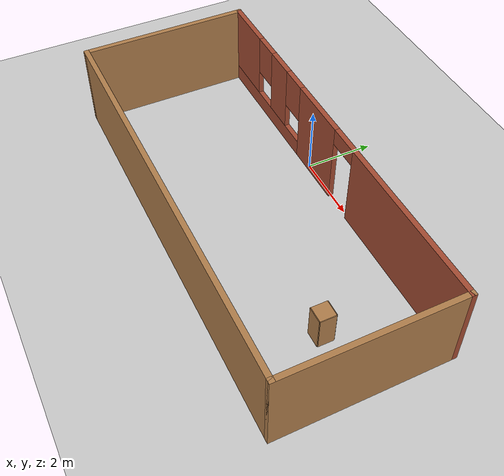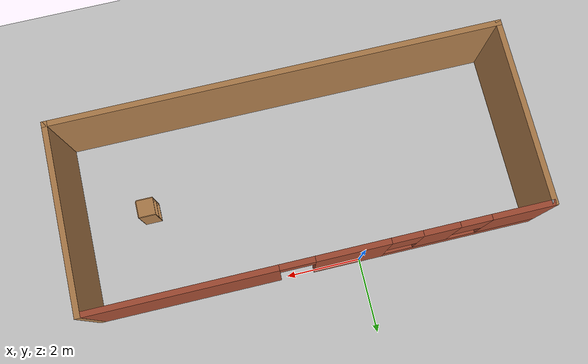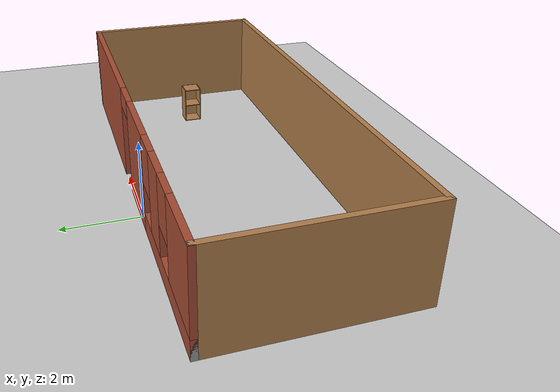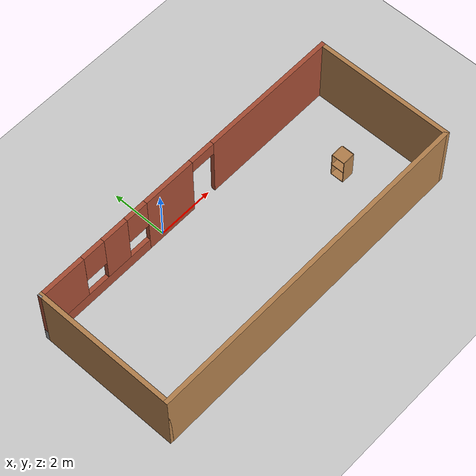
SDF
<sdf version="1.6">
 <world name="default">
  <model name="ground_plane">
   <static>1</static>
   <link name="link">
    <collision name="collision">
     <geometry><plane><normal>0 0 1</normal><size>100 100</size></plane></geometry>
     <surface>
      <contact><collide_bitmask>65535</collide_bitmask></contact>
      <friction><ode><mu>100</mu><mu2>50</mu2></ode></friction>
     </surface>
    </collision>
    <visual name="visual">
     <cast_shadows>0</cast_shadows>
     <geometry><plane><normal>0 0 1</normal><size>100 100</size></plane></geometry>
     <material>
      <script><uri>file://media/materials/scripts/gazebo.material</uri><name>Gazebo/Grey</name></script>
     </material>
    </visual>
   </link>
  </model>
  <model name="rectangle_building_1">
   <pose>1.17854 -2.44652 0 0 -0 0</pose>
   <link name="Wall_13">
    <collision name="Wall_13_Collision">
     <geometry><box><size>0.15 0.15 2.5</size></box></geometry>
     <pose>0 0 1.25 0 -0 0</pose>
    </collision>
    <visual name="Wall_13_Visual">
     <pose>0 0 1.25 0 -0 0</pose>
     <geometry><box><size>0.15 0.15 2.5</size></box></geometry>
     <material>
      <script><uri>file://media/materials/scripts/gazebo.material</uri><name>Gazebo/Grey</name></script>
      <ambient>1 1 1 1</ambient>
     </material>
     <meta><layer>0</layer></meta>
    </visual>
    <pose>-5.925 2.425 0 0 -0 0</pose>
   </link>
   <link name="Wall_26">
    <collision name="Wall_26_Collision">
     <geometry><box><size>5 0.15 2.5</size></box></geometry>
     <pose>0 0 1.25 0 -0 0</pose>
    </collision>
    <visual name="Wall_26_Visual">
     <pose>0 0 1.25 0 -0 0</pose>
     <geometry><box><size>5 0.15 2.5</size></box></geometry>
     <material>
      <script><uri>file://media/materials/scripts/gazebo.material</uri><name>Gazebo/Wood</name></script>
      <ambient>1 1 1 1</ambient>
     </material>
     <meta><layer>0</layer></meta>
    </visual>
    <pose>-5.925 0 0 0 0 -1.5708</pose>
   </link>
   <link name="Wall_27">
    <collision name="Wall_27_Collision">
     <geometry><box><size>12 0.15 2.5</size></box></geometry>
     <pose>0 0 1.25 0 -0 0</pose>
    </collision>
    <visual name="Wall_27_Visual">
     <pose>0 0 1.25 0 -0 0</pose>
     <geometry><box><size>12 0.15 2.5</size></box></geometry>
     <material>
      <script><uri>file://media/materials/scripts/gazebo.material</uri><name>Gazebo/Wood</name></script>
      <ambient>0.435294 0.796078 0.67451 1</ambient>
     </material>
     <meta><layer>0</layer></meta>
    </visual>
    <pose>0 -2.425 0 0 -0 0</pose>
   </link>
   <link name="Wall_28">
    <collision name="Wall_28_Collision">
     <geometry><box><size>5 0.15 2.5</size></box></geometry>
     <pose>0 0 1.25 0 -0 0</pose>
    </collision>
    <visual name="Wall_28_Visual">
     <pose>0 0 1.25 0 -0 0</pose>
     <geometry><box><size>5 0.15 2.5</size></box></geometry>
     <material>
      <script><uri>file://media/materials/scripts/gazebo.material</uri><name>Gazebo/Wood</name></script>
      <ambient>0.996078 0.47451 0.0196078 1</ambient>
     </material>
     <meta><layer>0</layer></meta>
    </visual>
    <pose>5.925 0 0 0 -0 1.5708</pose>
   </link>
   <link name="Wall_29">
    <pose>0 2.425 0 0 -0 3.14159</pose>
    <visual name="Wall_29_Visual_0">
     <pose>-3.50367 0 1.25 0 -0 0</pose>
     <geometry><box><size>4.99266 0.15 2.5</size></box></geometry>
     <material>
      <script><uri>file://media/materials/scripts/gazebo.material</uri><name>Gazebo/Bricks</name></script>
      <ambient>1 1 1 1</ambient>
     </material>
     <meta><layer>0</layer></meta>
    </visual>
    <collision name="Wall_29_Collision_0">
     <geometry><box><size>4.99266 0.15 2.5</size></box></geometry>
     <pose>-3.50367 0 1.25 0 -0 0</pose>
    </collision>
    <visual name="Wall_29_Visual_1">
     <pose>0.843056 0 1.25 0 -0 0</pose>
     <geometry><box><size>1.9008 0.15 2.5</size></box></geometry>
     <material>
      <script><uri>file://media/materials/scripts/gazebo.material</uri><name>Gazebo/Bricks</name></script>
      <ambient>1 1 1 1</ambient>
     </material>
     <meta><layer>0</layer></meta>
    </visual>
    <collision name="Wall_29_Collision_1">
     <geometry><box><size>1.9008 0.15 2.5</size></box></geometry>
     <pose>0.843056 0 1.25 0 -0 0</pose>
    </collision>
    <visual name="Wall_29_Visual_2">
     <pose>3.89673 0 0.25 0 -0 0</pose>
     <geometry><box><size>4.20654 0.15 0.5</size></box></geometry>
     <material>
      <script><uri>file://media/materials/scripts/gazebo.material</uri><name>Gazebo/Bricks</name></script>
      <ambient>1 1 1 1</ambient>
     </material>
     <meta><layer>0</layer></meta>
    </visual>
    <collision name="Wall_29_Collision_2">
     <geometry><box><size>4.20654 0.15 0.5</size></box></geometry>
     <pose>3.89673 0 0.25 0 -0 0</pose>
    </collision>
    <visual name="Wall_29_Visual_3">
     <pose>3.05969 0 1.5 0 -0 0</pose>
     <geometry><box><size>0.932475 0.15 2</size></box></geometry>
     <material>
      <script><uri>file://media/materials/scripts/gazebo.material</uri><name>Gazebo/Bricks</name></script>
      <ambient>1 1 1 1</ambient>
     </material>
     <meta><layer>0</layer></meta>
    </visual>
    <collision name="Wall_29_Collision_3">
     <geometry><box><size>0.932475 0.15 2</size></box></geometry>
     <pose>3.05969 0 1.5 0 -0 0</pose>
    </collision>
    <visual name="Wall_29_Visual_4">
     <pose>5.16297 0 1.5 0 -0 0</pose>
     <geometry><box><size>1.67407 0.15 2</size></box></geometry>
     <material>
      <script><uri>file://media/materials/scripts/gazebo.material</uri><name>Gazebo/Bricks</name></script>
      <ambient>1 1 1 1</ambient>
     </material>
     <meta><layer>0</layer></meta>
    </visual>
    <collision name="Wall_29_Collision_4">
     <geometry><box><size>1.67407 0.15 2</size></box></geometry>
     <pose>5.16297 0 1.5 0 -0 0</pose>
    </collision>
    <visual name="Wall_29_Visual_5">
     <pose>2.19346 0 1.9 0 -0 0</pose>
     <geometry><box><size>0.8 0.15 1.2</size></box></geometry>
     <material>
      <script><uri>file://media/materials/scripts/gazebo.material</uri><name>Gazebo/Bricks</name></script>
      <ambient>1 1 1 1</ambient>
     </material>
     <meta><layer>0</layer></meta>
    </visual>
    <collision name="Wall_29_Collision_5">
     <geometry><box><size>0.8 0.15 1.2</size></box></geometry>
     <pose>2.19346 0 1.9 0 -0 0</pose>
    </collision>
    <visual name="Wall_29_Visual_6">
     <pose>3.92593 0 1.9 0 -0 0</pose>
     <geometry><box><size>0.8 0.15 1.2</size></box></geometry>
     <material>
      <script><uri>file://media/materials/scripts/gazebo.material</uri><name>Gazebo/Bricks</name></script>
      <ambient>1 1 1 1</ambient>
     </material>
     <meta><layer>0</layer></meta>
    </visual>
    <collision name="Wall_29_Collision_6">
     <geometry><box><size>0.8 0.15 1.2</size></box></geometry>
     <pose>3.92593 0 1.9 0 -0 0</pose>
    </collision>
    <visual name="Wall_29_Visual_7">
     <pose>-0.557344 0 2.25 0 -0 0</pose>
     <geometry><box><size>0.9 0.15 0.5</size></box></geometry>
     <material>
      <script><uri>file://media/materials/scripts/gazebo.material</uri><name>Gazebo/Bricks</name></script>
      <ambient>1 1 1 1</ambient>
     </material>
     <meta><layer>0</layer></meta>
    </visual>
    <collision name="Wall_29_Collision_7">
     <geometry><box><size>0.9 0.15 0.5</size></box></geometry>
     <pose>-0.557344 0 2.25 0 -0 0</pose>
    </collision>
   </link>
   <static>1</static>
  </model>
  <model name="cabinet">
   <static>1</static>
   <link name="cabinet_bottom_plate">
    <inertial>
     <pose>0 0 -1 0 -0 0</pose>
     <inertia><ixx>2.05</ixx><ixy>0</ixy><ixz>0</ixz><iyy>2.05</iyy><iyz>0</iyz><izz>2.05</izz></inertia>
     <mass>25</mass>
    </inertial>
    <collision name="cabinet_bottom_plate_geom">
     <pose>0 0 0.01 0 -0 0</pose>
     <geometry><box><size>0.45 0.45 0.02</size></box></geometry>
    </collision>
    <visual name="cabinet_bottom_plate_geom_visual">
     <pose>0 0 0.01 0 -0 0</pose>
     <geometry><box><size>0.45 0.45 0.02</size></box></geometry>
     <material>
      <script><uri>file://media/materials/scripts/gazebo.material</uri><name>Gazebo/Wood</name></script>
     </material>
    </visual>
    <collision name="cabinet_bottom_plate_geom_cabinet_back_plate">
     <pose>0.235 0 0.51 0 -0 0</pose>
     <geometry><box><size>0.02 0.45 1.02</size></box></geometry>
    </collision>
    <visual name="cabinet_bottom_plate_geom_cabinet_back_plate_visual">
     <pose>0.235 0 0.51 0 -0 0</pose>
     <geometry><box><size>0.02 0.45 1.02</size></box></geometry>
     <material>
      <script><uri>file://media/materials/scripts/gazebo.material</uri><name>Gazebo/Wood</name></script>
     </material>
    </visual>
    <collision name="cabinet_bottom_plate_geom_cabinet_left_plate">
     <pose>0 0.235 0.51 0 -0 0</pose>
     <geometry><box><size>0.45 0.02 1.02</size></box></geometry>
    </collision>
    <visual name="cabinet_bottom_plate_geom_cabinet_left_plate_visual">
     <pose>0 0.235 0.51 0 -0 0</pose>
     <geometry><box><size>0.45 0.02 1.02</size></box></geometry>
     <material>
      <script><uri>file://media/materials/scripts/gazebo.material</uri><name>Gazebo/Wood</name></script>
     </material>
    </visual>
    <collision name="cabinet_bottom_plate_geom_cabinet_middle_plate">
     <pose>0 0 0.51 0 -0 0</pose>
     <geometry><box><size>0.45 0.45 0.02</size></box></geometry>
    </collision>
    <visual name="cabinet_bottom_plate_geom_cabinet_middle_plate_visual">
     <pose>0 0 0.51 0 -0 0</pose>
     <geometry><box><size>0.45 0.45 0.02</size></box></geometry>
     <material>
      <script><uri>file://media/materials/scripts/gazebo.material</uri><name>Gazebo/Wood</name></script>
     </material>
    </visual>
    <collision name="cabinet_bottom_plate_geom_cabinet_right_plate">
     <pose>0 -0.235 0.51 0 -0 0</pose>
     <geometry><box><size>0.45 0.02 1.02</size></box></geometry>
    </collision>
    <visual name="cabinet_bottom_plate_geom_cabinet_right_plate_visual">
     <pose>0 -0.235 0.51 0 -0 0</pose>
     <geometry><box><size>0.45 0.02 1.02</size></box></geometry>
     <material>
      <script><uri>file://media/materials/scripts/gazebo.material</uri><name>Gazebo/Wood</name></script>
     </material>
    </visual>
    <collision name="cabinet_bottom_plate_geom_cabinet_top_plate">
     <pose>0 0 1.01 0 -0 0</pose>
     <geometry><box><size>0.45 0.45 0.02</size></box></geometry>
    </collision>
    <visual name="cabinet_bottom_plate_geom_cabinet_top_plate_visual">
     <pose>0 0 1.01 0 -0 0</pose>
     <geometry><box><size>0.45 0.45 0.02</size></box></geometry>
     <material>
      <script><uri>file://media/materials/scripts/gazebo.material</uri><name>Gazebo/Wood</name></script>
     </material>
    </visual>
   </link>
   <pose>5.25842 -2.54142 0 0 -0 0</pose>
  </model>
 </world>
</sdf>
